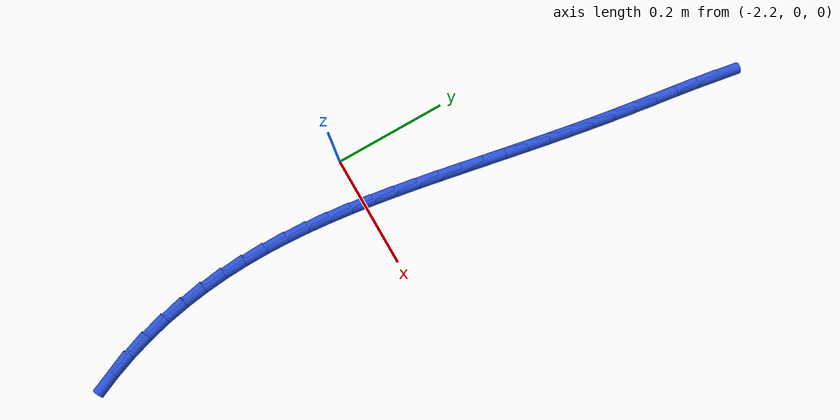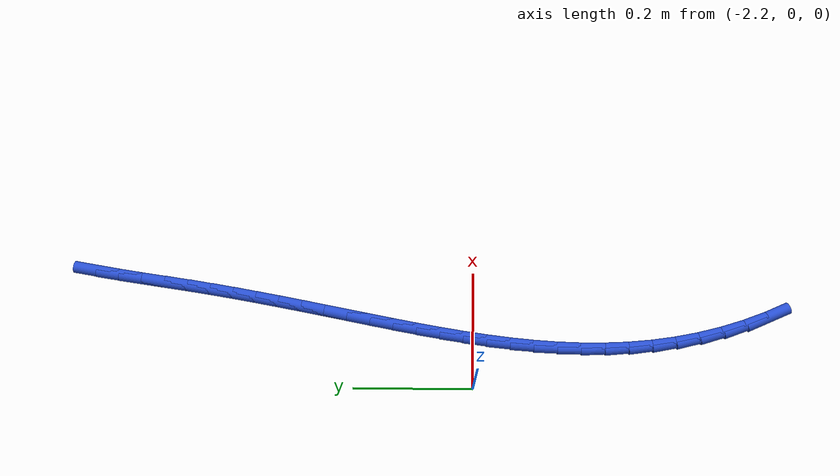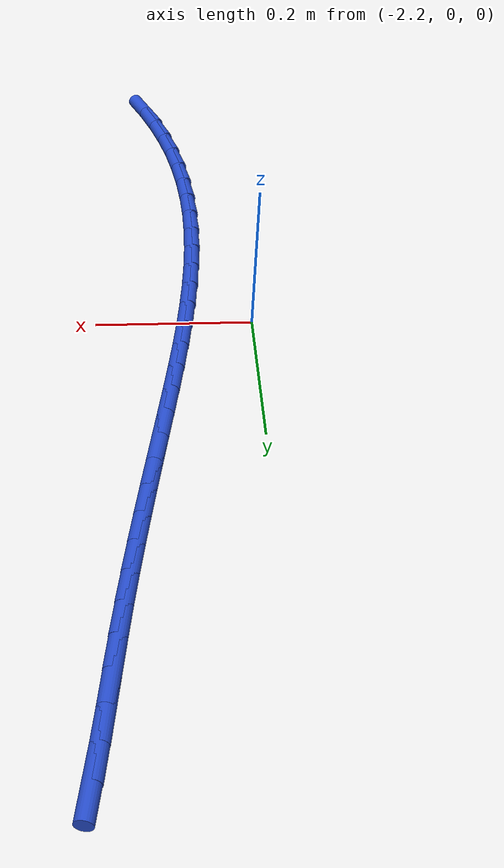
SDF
<sdf version="1.6">
 <world name="default">
  <model name="ground_plane">
   <static>1</static>
   <link name="link">
    <collision name="collision">
     <geometry><plane><normal>0 0 1</normal><size>100 100</size></plane></geometry>
     <surface><friction><ode><mu>100</mu><mu2>50</mu2></ode></friction></surface>
    </collision>
    <visual name="visual">
     <cast_shadows>0</cast_shadows>
     <geometry><plane><normal>0 0 1</normal><size>100 100</size></plane></geometry>
     <material>
      <script><uri>file://media/materials/scripts/gazebo.material</uri><name>Gazebo/WhiteGlow</name></script>
     </material>
    </visual>
   </link>
  </model>
  <model name="line">
   <link name="link_75">
    <pose>-2.0039247241432623 0.6391387417522245 0.01 0 1.57 1.4023613540720348</pose>
    <collision name="collision">
     <geometry><cylinder><radius>0.01</radius><length>0.08</length></cylinder></geometry>
    </collision>
    <visual name="visual">
     <material>
      <script><name>Gazebo/Blue</name><uri>file://media/materials/scripts/gazebo.material</uri></script>
     </material>
     <geometry><cylinder><radius>0.01</radius><length>0.08</length></cylinder></geometry>
    </visual>
   </link>
   <link name="link_76">
    <pose>-2.0105260310344275 0.6003180545363457 0.01 0 1.57 1.4183796505299378</pose>
    <collision name="collision">
     <geometry><cylinder><radius>0.01</radius><length>0.08</length></cylinder></geometry>
    </collision>
    <visual name="visual">
     <material>
      <script><name>Gazebo/Blue</name><uri>file://media/materials/scripts/gazebo.material</uri></script>
     </material>
     <geometry><cylinder><radius>0.01</radius><length>0.08</length></cylinder></geometry>
    </visual>
   </link>
   <link name="link_77">
    <pose>-2.016505252694345 0.5613928584735252 0.01 0 1.57 1.4260697138946712</pose>
    <collision name="collision">
     <geometry><cylinder><radius>0.01</radius><length>0.08</length></cylinder></geometry>
    </collision>
    <visual name="visual">
     <material>
      <script><name>Gazebo/Blue</name><uri>file://media/materials/scripts/gazebo.material</uri></script>
     </material>
     <geometry><cylinder><radius>0.01</radius><length>0.08</length></cylinder></geometry>
    </visual>
   </link>
   <link name="link_78">
    <pose>-2.0221853452436394 0.5224202125006054 0.01 0 1.57 1.425435767744703</pose>
    <collision name="collision">
     <geometry><cylinder><radius>0.01</radius><length>0.08</length></cylinder></geometry>
    </collision>
    <visual name="visual">
     <material>
      <script><name>Gazebo/Blue</name><uri>file://media/materials/scripts/gazebo.material</uri></script>
     </material>
     <geometry><cylinder><radius>0.01</radius><length>0.08</length></cylinder></geometry>
    </visual>
   </link>
   <link name="link_79">
    <pose>-2.027889264802934 0.48345717555442774 0.01 0 1.57 1.4169697358094344</pose>
    <collision name="collision">
     <geometry><cylinder><radius>0.01</radius><length>0.08</length></cylinder></geometry>
    </collision>
    <visual name="visual">
     <material>
      <script><name>Gazebo/Blue</name><uri>file://media/materials/scripts/gazebo.material</uri></script>
     </material>
     <geometry><cylinder><radius>0.01</radius><length>0.08</length></cylinder></geometry>
    </visual>
   </link>
   <link name="link_80">
    <pose>-2.0339208390203525 0.4445567183730713 0.01 0 1.57 1.4064179368934326</pose>
    <collision name="collision">
     <geometry><cylinder><radius>0.01</radius><length>0.08</length></cylinder></geometry>
    </collision>
    <visual name="visual">
     <material>
      <script><name>Gazebo/Blue</name><uri>file://media/materials/scripts/gazebo.material</uri></script>
     </material>
     <geometry><cylinder><radius>0.01</radius><length>0.08</length></cylinder></geometry>
    </visual>
   </link>
   <link name="link_81">
    <pose>-2.0403621498495514 0.4057244194904799 0.01 0 1.57 1.3974937586914222</pose>
    <collision name="collision">
     <geometry><cylinder><radius>0.01</radius><length>0.08</length></cylinder></geometry>
    </collision>
    <visual name="visual">
     <material>
      <script><name>Gazebo/Blue</name><uri>file://media/materials/scripts/gazebo.material</uri></script>
     </material>
     <geometry><cylinder><radius>0.01</radius><length>0.08</length></cylinder></geometry>
    </visual>
   </link>
   <link name="link_82">
    <pose>-2.047152512680406 0.3669353449106868 0.01 0 1.57 1.3902678403352844</pose>
    <collision name="collision">
     <geometry><cylinder><radius>0.01</radius><length>0.08</length></cylinder></geometry>
    </collision>
    <visual name="visual">
     <material>
      <script><name>Gazebo/Blue</name><uri>file://media/materials/scripts/gazebo.material</uri></script>
     </material>
     <geometry><cylinder><radius>0.01</radius><length>0.08</length></cylinder></geometry>
    </visual>
   </link>
   <link name="link_83">
    <pose>-2.054228876686449 0.32816405492234585 0.01 0 1.57 1.3847444202526318</pose>
    <collision name="collision">
     <geometry><cylinder><radius>0.01</radius><length>0.08</length></cylinder></geometry>
    </collision>
    <visual name="visual">
     <material>
      <script><name>Gazebo/Blue</name><uri>file://media/materials/scripts/gazebo.material</uri></script>
     </material>
     <geometry><cylinder><radius>0.01</radius><length>0.08</length></cylinder></geometry>
    </visual>
   </link>
   <link name="link_84">
    <pose>-2.0615281910412127 0.28938510981411286 0.01 0 1.57 1.38092332733597</pose>
    <collision name="collision">
     <geometry><cylinder><radius>0.01</radius><length>0.08</length></cylinder></geometry>
    </collision>
    <visual name="visual">
     <material>
      <script><name>Gazebo/Blue</name><uri>file://media/materials/scripts/gazebo.material</uri></script>
     </material>
     <geometry><cylinder><radius>0.01</radius><length>0.08</length></cylinder></geometry>
    </visual>
   </link>
   <link name="link_85">
    <pose>-2.068987404918231 0.25057306987464156 0.01 0 1.57 1.3788004835145966</pose>
    <collision name="collision">
     <geometry><cylinder><radius>0.01</radius><length>0.08</length></cylinder></geometry>
    </collision>
    <visual name="visual">
     <material>
      <script><name>Gazebo/Blue</name><uri>file://media/materials/scripts/gazebo.material</uri></script>
     </material>
     <geometry><cylinder><radius>0.01</radius><length>0.08</length></cylinder></geometry>
    </visual>
   </link>
   <link name="link_86">
    <pose>-2.0765434674910366 0.21170249539258731 0.01 0 1.57 1.3784141836041317</pose>
    <collision name="collision">
     <geometry><cylinder><radius>0.01</radius><length>0.08</length></cylinder></geometry>
    </collision>
    <visual name="visual">
     <material>
      <script><name>Gazebo/Blue</name><uri>file://media/materials/scripts/gazebo.material</uri></script>
     </material>
     <geometry><cylinder><radius>0.01</radius><length>0.08</length></cylinder></geometry>
    </visual>
   </link>
   <link name="link_87">
    <pose>-2.084131339781906 0.17274862434291005 0.01 0 1.57 1.3808060660341874</pose>
    <collision name="collision">
     <geometry><cylinder><radius>0.01</radius><length>0.08</length></cylinder></geometry>
    </collision>
    <visual name="visual">
     <material>
      <script><name>Gazebo/Blue</name><uri>file://media/materials/scripts/gazebo.material</uri></script>
     </material>
     <geometry><cylinder><radius>0.01</radius><length>0.08</length></cylinder></geometry>
    </visual>
   </link>
   <link name="link_88">
    <pose>-2.0916403371115746 0.13370225361076143 0.01 0 1.57 1.3870167138909864</pose>
    <collision name="collision">
     <geometry><cylinder><radius>0.01</radius><length>0.08</length></cylinder></geometry>
    </collision>
    <visual name="visual">
     <material>
      <script><name>Gazebo/Blue</name><uri>file://media/materials/scripts/gazebo.material</uri></script>
     </material>
     <geometry><cylinder><radius>0.01</radius><length>0.08</length></cylinder></geometry>
    </visual>
   </link>
   <link name="link_89">
    <pose>-2.0989141744849302 0.09456972352120348 0.01 0 1.57 1.3970961270161533</pose>
    <collision name="collision">
     <geometry><cylinder><radius>0.01</radius><length>0.08</length></cylinder></geometry>
    </collision>
    <visual name="visual">
     <material>
      <script><name>Gazebo/Blue</name><uri>file://media/materials/scripts/gazebo.material</uri></script>
     </material>
     <geometry><cylinder><radius>0.01</radius><length>0.08</length></cylinder></geometry>
    </visual>
   </link>
   <link name="link_90">
    <pose>-2.1057945878327464 0.05535804899154498 0.01 0 1.57 1.4110661152861639</pose>
    <collision name="collision">
     <geometry><cylinder><radius>0.01</radius><length>0.08</length></cylinder></geometry>
    </collision>
    <visual name="visual">
     <material>
      <script><name>Gazebo/Blue</name><uri>file://media/materials/scripts/gazebo.material</uri></script>
     </material>
     <geometry><cylinder><radius>0.01</radius><length>0.08</length></cylinder></geometry>
    </visual>
   </link>
   <link name="link_91">
    <pose>-2.112123313085795 0.016074244939095154 0.01 0 1.57 1.428961561237746</pose>
    <collision name="collision">
     <geometry><cylinder><radius>0.01</radius><length>0.08</length></cylinder></geometry>
    </collision>
    <visual name="visual">
     <material>
      <script><name>Gazebo/Blue</name><uri>file://media/materials/scripts/gazebo.material</uri></script>
     </material>
     <geometry><cylinder><radius>0.01</radius><length>0.08</length></cylinder></geometry>
    </visual>
   </link>
   <link name="link_92">
    <pose>-2.1177420861748493 -0.023274673718837645 0.01 0 1.57 1.4508242233019553</pose>
    <collision name="collision">
     <geometry><cylinder><radius>0.01</radius><length>0.08</length></cylinder></geometry>
    </collision>
    <visual name="visual">
     <material>
      <script><name>Gazebo/Blue</name><uri>file://media/materials/scripts/gazebo.material</uri></script>
     </material>
     <geometry><cylinder><radius>0.01</radius><length>0.08</length></cylinder></geometry>
    </visual>
   </link>
   <link name="link_93">
    <pose>-2.1224926430306814 -0.06268169206494253 0.01 0 1.57 1.4766945491314287</pose>
    <collision name="collision">
     <geometry><cylinder><radius>0.01</radius><length>0.08</length></cylinder></geometry>
    </collision>
    <visual name="visual">
     <material>
      <script><name>Gazebo/Blue</name><uri>file://media/materials/scripts/gazebo.material</uri></script>
     </material>
     <geometry><cylinder><radius>0.01</radius><length>0.08</length></cylinder></geometry>
    </visual>
   </link>
   <link name="link_94">
    <pose>-2.126216719584064 -0.10213979518191116 0.01 0 1.57 1.506601300669178</pose>
    <collision name="collision">
     <geometry><cylinder><radius>0.01</radius><length>0.08</length></cylinder></geometry>
    </collision>
    <visual name="visual">
     <material>
      <script><name>Gazebo/Blue</name><uri>file://media/materials/scripts/gazebo.material</uri></script>
     </material>
     <geometry><cylinder><radius>0.01</radius><length>0.08</length></cylinder></geometry>
    </visual>
   </link>
   <link name="link_95">
    <pose>-2.1287560517657713 -0.14164196815243424 0.01 0 1.57 1.5405489258995904</pose>
    <collision name="collision">
     <geometry><cylinder><radius>0.01</radius><length>0.08</length></cylinder></geometry>
    </collision>
    <visual name="visual">
     <material>
      <script><name>Gazebo/Blue</name><uri>file://media/materials/scripts/gazebo.material</uri></script>
     </material>
     <geometry><cylinder><radius>0.01</radius><length>0.08</length></cylinder></geometry>
    </visual>
   </link>
   <link name="link_96">
    <pose>-2.1299523755065746 -0.1811811960592027 0.01 0 1.57 -1.5630897719805017</pose>
    <collision name="collision">
     <geometry><cylinder><radius>0.01</radius><length>0.08</length></cylinder></geometry>
    </collision>
    <visual name="visual">
     <material>
      <script><name>Gazebo/Blue</name><uri>file://media/materials/scripts/gazebo.material</uri></script>
     </material>
     <geometry><cylinder><radius>0.01</radius><length>0.08</length></cylinder></geometry>
    </visual>
   </link>
   <link name="link_97">
    <pose>-2.1296474267372463 -0.2207504639849071 0.01 0 1.57 -1.5212191128508512</pose>
    <collision name="collision">
     <geometry><cylinder><radius>0.01</radius><length>0.08</length></cylinder></geometry>
    </collision>
    <visual name="visual">
     <material>
      <script><name>Gazebo/Blue</name><uri>file://media/materials/scripts/gazebo.material</uri></script>
     </material>
     <geometry><cylinder><radius>0.01</radius><length>0.08</length></cylinder></geometry>
    </visual>
   </link>
   <link name="link_98">
    <pose>-2.1276829413885605 -0.2603427570122393 0.01 0 1.57 -1.4755927561515498</pose>
    <collision name="collision">
     <geometry><cylinder><radius>0.01</radius><length>0.08</length></cylinder></geometry>
    </collision>
    <visual name="visual">
     <material>
      <script><name>Gazebo/Blue</name><uri>file://media/materials/scripts/gazebo.material</uri></script>
     </material>
     <geometry><cylinder><radius>0.01</radius><length>0.08</length></cylinder></geometry>
    </visual>
   </link>
   <link name="link_99">
    <pose>-2.1239006553912887 -0.29995106022388823 0.01 0 1.57 -1.4264577131944498</pose>
    <collision name="collision">
     <geometry><cylinder><radius>0.01</radius><length>0.08</length></cylinder></geometry>
    </collision>
    <visual name="visual">
     <material>
      <script><name>Gazebo/Blue</name><uri>file://media/materials/scripts/gazebo.material</uri></script>
     </material>
     <geometry><cylinder><radius>0.01</radius><length>0.08</length></cylinder></geometry>
    </visual>
   </link>
   <link name="link_100">
    <pose>-2.1181423046762045 -0.33956835870254576 0.01 0 1.57 -1.3741575123646714</pose>
    <collision name="collision">
     <geometry><cylinder><radius>0.01</radius><length>0.08</length></cylinder></geometry>
    </collision>
    <visual name="visual">
     <material>
      <script><name>Gazebo/Blue</name><uri>file://media/materials/scripts/gazebo.material</uri></script>
     </material>
     <geometry><cylinder><radius>0.01</radius><length>0.08</length></cylinder></geometry>
    </visual>
   </link>
   <link name="link_101">
    <pose>-2.11024962517408 -0.3791876375309025 0.01 0 1.57 -1.319408258790788</pose>
    <collision name="collision">
     <geometry><cylinder><radius>0.01</radius><length>0.08</length></cylinder></geometry>
    </collision>
    <visual name="visual">
     <material>
      <script><name>Gazebo/Blue</name><uri>file://media/materials/scripts/gazebo.material</uri></script>
     </material>
     <geometry><cylinder><radius>0.01</radius><length>0.08</length></cylinder></geometry>
    </visual>
   </link>
   <link name="link_102">
    <pose>-2.100083555795594 -0.41877189565264356 0.01 0 1.57 -1.2640343975273092</pose>
    <collision name="collision">
     <geometry><cylinder><radius>0.01</radius><length>0.08</length></cylinder></geometry>
    </collision>
    <visual name="visual">
     <material>
      <script><name>Gazebo/Blue</name><uri>file://media/materials/scripts/gazebo.material</uri></script>
     </material>
     <geometry><cylinder><radius>0.01</radius><length>0.08</length></cylinder></geometry>
    </visual>
   </link>
   <link name="link_103">
    <pose>-2.087628886577944 -0.45809073405373896 0.01 0 1.57 -1.207970827550159</pose>
    <collision name="collision">
     <geometry><cylinder><radius>0.01</radius><length>0.08</length></cylinder></geometry>
    </collision>
    <visual name="visual">
     <material>
      <script><name>Gazebo/Blue</name><uri>file://media/materials/scripts/gazebo.material</uri></script>
     </material>
     <geometry><cylinder><radius>0.01</radius><length>0.08</length></cylinder></geometry>
    </visual>
   </link>
   <link name="link_104">
    <pose>-2.072919559494563 -0.4968370012161383 0.01 0 1.57 -1.1503594420500807</pose>
    <collision name="collision">
     <geometry><cylinder><radius>0.01</radius><length>0.08</length></cylinder></geometry>
    </collision>
    <visual name="visual">
     <material>
      <script><name>Gazebo/Blue</name><uri>file://media/materials/scripts/gazebo.material</uri></script>
     </material>
     <geometry><cylinder><radius>0.01</radius><length>0.08</length></cylinder></geometry>
    </visual>
   </link>
  </model>
 </world>
</sdf>
